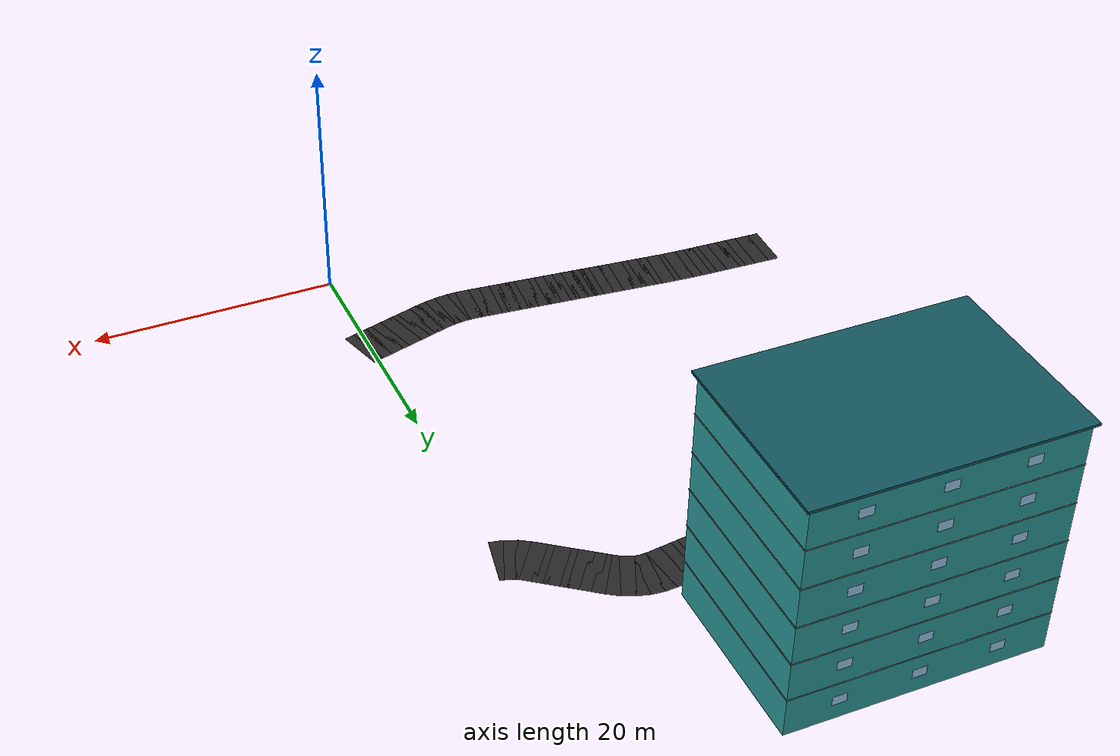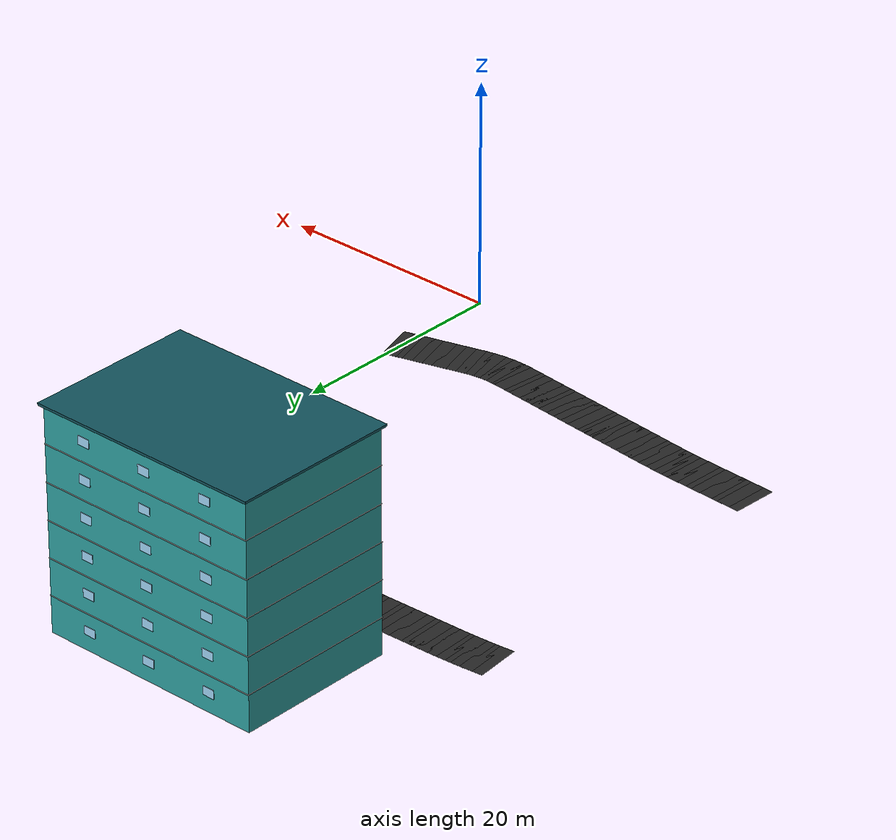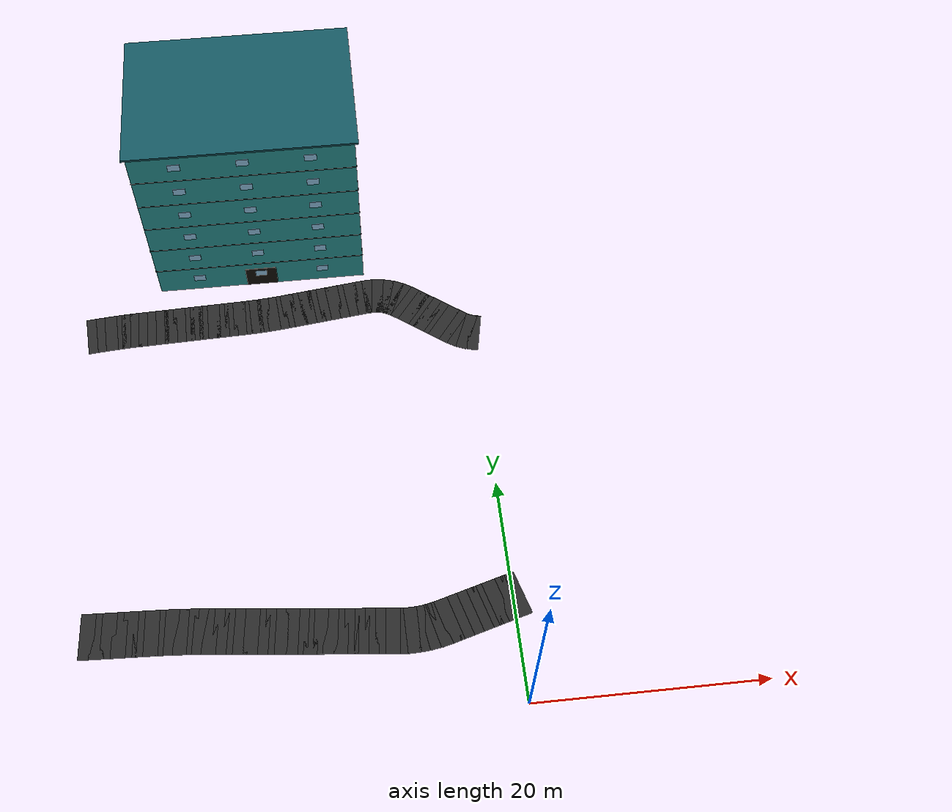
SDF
<sdf version="1.7">
 <world name="campus_delivery">
  <model name="campus_roads">
   <static>true</static>
   <link name="north_campus_loop_0176">
    <pose>0.088 36.438 0.002 0 0 2.942331</pose>
    <visual name="visual">
     <geometry><box><size>1.072 4.000 0.004</size></box></geometry>
     <material><ambient>0.160 0.160 0.160 1.000</ambient><diffuse>0.160 0.160 0.160 1.000</diffuse></material>
    </visual>
   </link>
   <link name="north_campus_loop_0177">
    <pose>-0.606 36.649 0.002 0 0 2.754195</pose>
    <visual name="visual">
     <geometry><box><size>1.085 4.000 0.004</size></box></geometry>
     <material><ambient>0.160 0.160 0.160 1.000</ambient><diffuse>0.160 0.160 0.160 1.000</diffuse></material>
    </visual>
   </link>
   <link name="north_campus_loop_0178">
    <pose>-1.273 36.994 0.002 0 0 2.578506</pose>
    <visual name="visual">
     <geometry><box><size>1.123 4.000 0.004</size></box></geometry>
     <material><ambient>0.160 0.160 0.160 1.000</ambient><diffuse>0.160 0.160 0.160 1.000</diffuse></material>
    </visual>
   </link>
   <link name="north_campus_loop_0179">
    <pose>-1.943 37.457 0.002 0 0 2.498092</pose>
    <visual name="visual">
     <geometry><box><size>1.207 4.000 0.004</size></box></geometry>
     <material><ambient>0.160 0.160 0.160 1.000</ambient><diffuse>0.160 0.160 0.160 1.000</diffuse></material>
    </visual>
   </link>
   <link name="north_campus_loop_0180">
    <pose>-2.629 37.971 0.002 0 0 2.498092</pose>
    <visual name="visual">
     <geometry><box><size>1.207 4.000 0.004</size></box></geometry>
     <material><ambient>0.160 0.160 0.160 1.000</ambient><diffuse>0.160 0.160 0.160 1.000</diffuse></material>
    </visual>
   </link>
   <link name="north_campus_loop_0181">
    <pose>-3.314 38.486 0.002 0 0 2.498092</pose>
    <visual name="visual">
     <geometry><box><size>1.207 4.000 0.004</size></box></geometry>
     <material><ambient>0.160 0.160 0.160 1.000</ambient><diffuse>0.160 0.160 0.160 1.000</diffuse></material>
    </visual>
   </link>
   <link name="north_campus_loop_0182">
    <pose>-4.000 39.000 0.002 0 0 2.498092</pose>
    <visual name="visual">
     <geometry><box><size>1.207 4.000 0.004</size></box></geometry>
     <material><ambient>0.160 0.160 0.160 1.000</ambient><diffuse>0.160 0.160 0.160 1.000</diffuse></material>
    </visual>
   </link>
   <link name="north_campus_loop_0183">
    <pose>-4.686 39.514 0.002 0 0 2.498092</pose>
    <visual name="visual">
     <geometry><box><size>1.207 4.000 0.004</size></box></geometry>
     <material><ambient>0.160 0.160 0.160 1.000</ambient><diffuse>0.160 0.160 0.160 1.000</diffuse></material>
    </visual>
   </link>
   <link name="north_campus_loop_0184">
    <pose>-5.371 40.029 0.002 0 0 2.498092</pose>
    <visual name="visual">
     <geometry><box><size>1.207 4.000 0.004</size></box></geometry>
     <material><ambient>0.160 0.160 0.160 1.000</ambient><diffuse>0.160 0.160 0.160 1.000</diffuse></material>
    </visual>
   </link>
   <link name="north_campus_loop_0185">
    <pose>-6.057 40.543 0.002 0 0 2.498092</pose>
    <visual name="visual">
     <geometry><box><size>1.207 4.000 0.004</size></box></geometry>
     <material><ambient>0.160 0.160 0.160 1.000</ambient><diffuse>0.160 0.160 0.160 1.000</diffuse></material>
    </visual>
   </link>
   <link name="north_campus_loop_0186">
    <pose>-6.728 41.011 0.002 0 0 2.569435</pose>
    <visual name="visual">
     <geometry><box><size>1.130 4.000 0.004</size></box></geometry>
     <material><ambient>0.160 0.160 0.160 1.000</ambient><diffuse>0.160 0.160 0.160 1.000</diffuse></material>
    </visual>
   </link>
   <link name="north_campus_loop_0187">
    <pose>-7.398 41.375 0.002 0 0 2.721815</pose>
    <visual name="visual">
     <geometry><box><size>1.101 4.000 0.004</size></box></geometry>
     <material><ambient>0.160 0.160 0.160 1.000</ambient><diffuse>0.160 0.160 0.160 1.000</diffuse></material>
    </visual>
   </link>
   <link name="north_campus_loop_0188">
    <pose>-8.100 41.624 0.002 0 0 2.882020</pose>
    <visual name="visual">
     <geometry><box><size>1.092 4.000 0.004</size></box></geometry>
     <material><ambient>0.160 0.160 0.160 1.000</ambient><diffuse>0.160 0.160 0.160 1.000</diffuse></material>
    </visual>
   </link>
   <link name="north_campus_loop_0189">
    <pose>-8.832 41.756 0.002 0 0 3.042225</pose>
    <visual name="visual">
     <geometry><box><size>1.101 4.000 0.004</size></box></geometry>
     <material><ambient>0.160 0.160 0.160 1.000</ambient><diffuse>0.160 0.160 0.160 1.000</diffuse></material>
    </visual>
   </link>
   <link name="north_campus_loop_0190">
    <pose>-9.595 41.773 0.002 0 0 -3.088581</pose>
    <visual name="visual">
     <geometry><box><size>1.130 4.000 0.004</size></box></geometry>
     <material><ambient>0.160 0.160 0.160 1.000</ambient><diffuse>0.160 0.160 0.160 1.000</diffuse></material>
    </visual>
   </link>
   <link name="north_campus_loop_0191">
    <pose>-10.431 41.696 0.002 0 0 -3.017238</pose>
    <visual name="visual">
     <geometry><box><size>1.249 4.000 0.004</size></box></geometry>
     <material><ambient>0.160 0.160 0.160 1.000</ambient><diffuse>0.160 0.160 0.160 1.000</diffuse></material>
    </visual>
   </link>
   <link name="north_campus_loop_0192">
    <pose>-11.323 41.585 0.002 0 0 -3.017238</pose>
    <visual name="visual">
     <geometry><box><size>1.249 4.000 0.004</size></box></geometry>
     <material><ambient>0.160 0.160 0.160 1.000</ambient><diffuse>0.160 0.160 0.160 1.000</diffuse></material>
    </visual>
   </link>
   <link name="north_campus_loop_0193">
    <pose>-12.215 41.473 0.002 0 0 -3.017238</pose>
    <visual name="visual">
     <geometry><box><size>1.249 4.000 0.004</size></box></geometry>
     <material><ambient>0.160 0.160 0.160 1.000</ambient><diffuse>0.160 0.160 0.160 1.000</diffuse></material>
    </visual>
   </link>
   <link name="north_campus_loop_0194">
    <pose>-13.108 41.362 0.002 0 0 -3.017238</pose>
    <visual name="visual">
     <geometry><box><size>1.249 4.000 0.004</size></box></geometry>
     <material><ambient>0.160 0.160 0.160 1.000</ambient><diffuse>0.160 0.160 0.160 1.000</diffuse></material>
    </visual>
   </link>
   <link name="north_campus_loop_0195">
    <pose>-14.000 41.250 0.002 0 0 -3.017238</pose>
    <visual name="visual">
     <geometry><box><size>1.249 4.000 0.004</size></box></geometry>
     <material><ambient>0.160 0.160 0.160 1.000</ambient><diffuse>0.160 0.160 0.160 1.000</diffuse></material>
    </visual>
   </link>
   <link name="north_campus_loop_0196">
    <pose>-14.892 41.138 0.002 0 0 -3.017238</pose>
    <visual name="visual">
     <geometry><box><size>1.249 4.000 0.004</size></box></geometry>
     <material><ambient>0.160 0.160 0.160 1.000</ambient><diffuse>0.160 0.160 0.160 1.000</diffuse></material>
    </visual>
   </link>
   <link name="north_campus_loop_0197">
    <pose>-15.785 41.027 0.002 0 0 -3.017238</pose>
    <visual name="visual">
     <geometry><box><size>1.249 4.000 0.004</size></box></geometry>
     <material><ambient>0.160 0.160 0.160 1.000</ambient><diffuse>0.160 0.160 0.160 1.000</diffuse></material>
    </visual>
   </link>
   <link name="north_campus_loop_0198">
    <pose>-16.677 40.915 0.002 0 0 -3.017238</pose>
    <visual name="visual">
     <geometry><box><size>1.249 4.000 0.004</size></box></geometry>
     <material><ambient>0.160 0.160 0.160 1.000</ambient><diffuse>0.160 0.160 0.160 1.000</diffuse></material>
    </visual>
   </link>
   <link name="north_campus_loop_0199">
    <pose>-17.569 40.804 0.002 0 0 -3.017238</pose>
    <visual name="visual">
     <geometry><box><size>1.249 4.000 0.004</size></box></geometry>
     <material><ambient>0.160 0.160 0.160 1.000</ambient><diffuse>0.160 0.160 0.160 1.000</diffuse></material>
    </visual>
   </link>
   <link name="north_campus_loop_0200">
    <pose>-18.413 40.702 0.002 0 0 -3.026095</pose>
    <visual name="visual">
     <geometry><box><size>1.150 4.000 0.004</size></box></geometry>
     <material><ambient>0.160 0.160 0.160 1.000</ambient><diffuse>0.160 0.160 0.160 1.000</diffuse></material>
    </visual>
   </link>
   <link name="north_campus_loop_0201">
    <pose>-19.208 40.617 0.002 0 0 -3.043825</pose>
    <visual name="visual">
     <geometry><box><size>1.149 4.000 0.004</size></box></geometry>
     <material><ambient>0.160 0.160 0.160 1.000</ambient><diffuse>0.160 0.160 0.160 1.000</diffuse></material>
    </visual>
   </link>
   <link name="north_campus_loop_0202">
    <pose>-20.004 40.546 0.002 0 0 -3.061566</pose>
    <visual name="visual">
     <geometry><box><size>1.149 4.000 0.004</size></box></geometry>
     <material><ambient>0.160 0.160 0.160 1.000</ambient><diffuse>0.160 0.160 0.160 1.000</diffuse></material>
    </visual>
   </link>
   <link name="north_campus_loop_0203">
    <pose>-20.801 40.489 0.002 0 0 -3.079307</pose>
    <visual name="visual">
     <geometry><box><size>1.149 4.000 0.004</size></box></geometry>
     <material><ambient>0.160 0.160 0.160 1.000</ambient><diffuse>0.160 0.160 0.160 1.000</diffuse></material>
    </visual>
   </link>
   <link name="north_campus_loop_0204">
    <pose>-21.599 40.446 0.002 0 0 -3.097036</pose>
    <visual name="visual">
     <geometry><box><size>1.150 4.000 0.004</size></box></geometry>
     <material><ambient>0.160 0.160 0.160 1.000</ambient><diffuse>0.160 0.160 0.160 1.000</diffuse></material>
    </visual>
   </link>
   <link name="north_campus_loop_0205">
    <pose>-22.415 40.414 0.002 0 0 -3.105894</pose>
    <visual name="visual">
     <geometry><box><size>1.184 4.000 0.004</size></box></geometry>
     <material><ambient>0.160 0.160 0.160 1.000</ambient><diffuse>0.160 0.160 0.160 1.000</diffuse></material>
    </visual>
   </link>
   <link name="north_campus_loop_0206">
    <pose>-23.249 40.384 0.002 0 0 -3.105894</pose>
    <visual name="visual">
     <geometry><box><size>1.184 4.000 0.004</size></box></geometry>
     <material><ambient>0.160 0.160 0.160 1.000</ambient><diffuse>0.160 0.160 0.160 1.000</diffuse></material>
    </visual>
   </link>
   <link name="north_campus_loop_0207">
    <pose>-24.083 40.354 0.002 0 0 -3.105894</pose>
    <visual name="visual">
     <geometry><box><size>1.184 4.000 0.004</size></box></geometry>
     <material><ambient>0.160 0.160 0.160 1.000</ambient><diffuse>0.160 0.160 0.160 1.000</diffuse></material>
    </visual>
   </link>
   <link name="north_campus_loop_0208">
    <pose>-24.916 40.324 0.002 0 0 -3.105894</pose>
    <visual name="visual">
     <geometry><box><size>1.184 4.000 0.004</size></box></geometry>
     <material><ambient>0.160 0.160 0.160 1.000</ambient><diffuse>0.160 0.160 0.160 1.000</diffuse></material>
    </visual>
   </link>
   <link name="north_campus_loop_0209">
    <pose>-25.750 40.295 0.002 0 0 -3.105894</pose>
    <visual name="visual">
     <geometry><box><size>1.184 4.000 0.004</size></box></geometry>
     <material><ambient>0.160 0.160 0.160 1.000</ambient><diffuse>0.160 0.160 0.160 1.000</diffuse></material>
    </visual>
   </link>
   <link name="north_campus_loop_0210">
    <pose>-26.583 40.265 0.002 0 0 -3.105894</pose>
    <visual name="visual">
     <geometry><box><size>1.184 4.000 0.004</size></box></geometry>
     <material><ambient>0.160 0.160 0.160 1.000</ambient><diffuse>0.160 0.160 0.160 1.000</diffuse></material>
    </visual>
   </link>
   <link name="north_campus_loop_0211">
    <pose>-27.417 40.235 0.002 0 0 -3.105894</pose>
    <visual name="visual">
     <geometry><box><size>1.184 4.000 0.004</size></box></geometry>
     <material><ambient>0.160 0.160 0.160 1.000</ambient><diffuse>0.160 0.160 0.160 1.000</diffuse></material>
    </visual>
   </link>
   <link name="north_campus_loop_0212">
    <pose>-28.250 40.205 0.002 0 0 -3.105894</pose>
    <visual name="visual">
     <geometry><box><size>1.184 4.000 0.004</size></box></geometry>
     <material><ambient>0.160 0.160 0.160 1.000</ambient><diffuse>0.160 0.160 0.160 1.000</diffuse></material>
    </visual>
   </link>
   <link name="north_campus_loop_0213">
    <pose>-29.084 40.176 0.002 0 0 -3.105894</pose>
    <visual name="visual">
     <geometry><box><size>1.184 4.000 0.004</size></box></geometry>
     <material><ambient>0.160 0.160 0.160 1.000</ambient><diffuse>0.160 0.160 0.160 1.000</diffuse></material>
    </visual>
   </link>
   <link name="north_campus_loop_0214">
    <pose>-29.917 40.146 0.002 0 0 -3.105894</pose>
    <visual name="visual">
     <geometry><box><size>1.184 4.000 0.004</size></box></geometry>
     <material><ambient>0.160 0.160 0.160 1.000</ambient><diffuse>0.160 0.160 0.160 1.000</diffuse></material>
    </visual>
   </link>
   <link name="north_campus_loop_0215">
    <pose>-30.751 40.116 0.002 0 0 -3.105894</pose>
    <visual name="visual">
     <geometry><box><size>1.184 4.000 0.004</size></box></geometry>
     <material><ambient>0.160 0.160 0.160 1.000</ambient><diffuse>0.160 0.160 0.160 1.000</diffuse></material>
    </visual>
   </link>
   <link name="north_campus_loop_0216">
    <pose>-31.585 40.086 0.002 0 0 -3.105894</pose>
    <visual name="visual">
     <geometry><box><size>1.184 4.000 0.004</size></box></geometry>
     <material><ambient>0.160 0.160 0.160 1.000</ambient><diffuse>0.160 0.160 0.160 1.000</diffuse></material>
    </visual>
   </link>
   <link name="north_campus_loop_0217">
    <pose>-32.401 40.055 0.002 0 0 -3.099500</pose>
    <visual name="visual">
     <geometry><box><size>1.150 4.000 0.004</size></box></geometry>
     <material><ambient>0.160 0.160 0.160 1.000</ambient><diffuse>0.160 0.160 0.160 1.000</diffuse></material>
    </visual>
   </link>
   <link name="north_campus_loop_0218">
    <pose>-33.200 40.016 0.002 0 0 -3.086706</pose>
    <visual name="visual">
     <geometry><box><size>1.150 4.000 0.004</size></box></geometry>
     <material><ambient>0.160 0.160 0.160 1.000</ambient><diffuse>0.160 0.160 0.160 1.000</diffuse></material>
    </visual>
   </link>
   <link name="north_campus_loop_0219">
    <pose>-33.998 39.967 0.002 0 0 -3.073909</pose>
    <visual name="visual">
     <geometry><box><size>1.150 4.000 0.004</size></box></geometry>
     <material><ambient>0.160 0.160 0.160 1.000</ambient><diffuse>0.160 0.160 0.160 1.000</diffuse></material>
    </visual>
   </link>
   <link name="north_campus_loop_0220">
    <pose>-34.795 39.908 0.002 0 0 -3.061111</pose>
    <visual name="visual">
     <geometry><box><size>1.150 4.000 0.004</size></box></geometry>
     <material><ambient>0.160 0.160 0.160 1.000</ambient><diffuse>0.160 0.160 0.160 1.000</diffuse></material>
    </visual>
   </link>
   <link name="north_campus_loop_0221">
    <pose>-35.592 39.838 0.002 0 0 -3.048318</pose>
    <visual name="visual">
     <geometry><box><size>1.150 4.000 0.004</size></box></geometry>
     <material><ambient>0.160 0.160 0.160 1.000</ambient><diffuse>0.160 0.160 0.160 1.000</diffuse></material>
    </visual>
   </link>
   <link name="north_campus_loop_0222">
    <pose>-36.435 39.756 0.002 0 0 -3.041924</pose>
    <visual name="visual">
     <geometry><box><size>1.244 4.000 0.004</size></box></geometry>
     <material><ambient>0.160 0.160 0.160 1.000</ambient><diffuse>0.160 0.160 0.160 1.000</diffuse></material>
    </visual>
   </link>
   <link name="north_campus_loop_0308">
    <pose>-35.779 9.324 0.002 0 0 -0.041643</pose>
    <visual name="visual">
     <geometry><box><size>1.240 4.000 0.004</size></box></geometry>
     <material><ambient>0.160 0.160 0.160 1.000</ambient><diffuse>0.160 0.160 0.160 1.000</diffuse></material>
    </visual>
   </link>
   <link name="north_campus_loop_0309">
    <pose>-34.889 9.287 0.002 0 0 -0.041643</pose>
    <visual name="visual">
     <geometry><box><size>1.240 4.000 0.004</size></box></geometry>
     <material><ambient>0.160 0.160 0.160 1.000</ambient><diffuse>0.160 0.160 0.160 1.000</diffuse></material>
    </visual>
   </link>
   <link name="north_campus_loop_0310">
    <pose>-34.000 9.250 0.002 0 0 -0.041643</pose>
    <visual name="visual">
     <geometry><box><size>1.240 4.000 0.004</size></box></geometry>
     <material><ambient>0.160 0.160 0.160 1.000</ambient><diffuse>0.160 0.160 0.160 1.000</diffuse></material>
    </visual>
   </link>
   <link name="north_campus_loop_0311">
    <pose>-33.111 9.213 0.002 0 0 -0.041643</pose>
    <visual name="visual">
     <geometry><box><size>1.240 4.000 0.004</size></box></geometry>
     <material><ambient>0.160 0.160 0.160 1.000</ambient><diffuse>0.160 0.160 0.160 1.000</diffuse></material>
    </visual>
   </link>
   <link name="north_campus_loop_0312">
    <pose>-32.221 9.176 0.002 0 0 -0.041643</pose>
    <visual name="visual">
     <geometry><box><size>1.240 4.000 0.004</size></box></geometry>
     <material><ambient>0.160 0.160 0.160 1.000</ambient><diffuse>0.160 0.160 0.160 1.000</diffuse></material>
    </visual>
   </link>
   <link name="north_campus_loop_0313">
    <pose>-31.332 9.139 0.002 0 0 -0.041643</pose>
    <visual name="visual">
     <geometry><box><size>1.240 4.000 0.004</size></box></geometry>
     <material><ambient>0.160 0.160 0.160 1.000</ambient><diffuse>0.160 0.160 0.160 1.000</diffuse></material>
    </visual>
   </link>
   <link name="north_campus_loop_0314">
    <pose>-30.443 9.102 0.002 0 0 -0.041643</pose>
    <visual name="visual">
     <geometry><box><size>1.240 4.000 0.004</size></box></geometry>
     <material><ambient>0.160 0.160 0.160 1.000</ambient><diffuse>0.160 0.160 0.160 1.000</diffuse></material>
    </visual>
   </link>
   <link name="north_campus_loop_0315">
    <pose>-29.599 9.064 0.002 0 0 -0.047443</pose>
    <visual name="visual">
     <geometry><box><size>1.150 4.000 0.004</size></box></geometry>
     <material><ambient>0.160 0.160 0.160 1.000</ambient><diffuse>0.160 0.160 0.160 1.000</diffuse></material>
    </visual>
   </link>
   <link name="north_campus_loop_0316">
    <pose>-28.800 9.022 0.002 0 0 -0.059048</pose>
    <visual name="visual">
     <geometry><box><size>1.150 4.000 0.004</size></box></geometry>
     <material><ambient>0.160 0.160 0.160 1.000</ambient><diffuse>0.160 0.160 0.160 1.000</diffuse></material>
    </visual>
   </link>
   <link name="north_campus_loop_0317">
    <pose>-28.002 8.970 0.002 0 0 -0.070656</pose>
    <visual name="visual">
     <geometry><box><size>1.150 4.000 0.004</size></box></geometry>
     <material><ambient>0.160 0.160 0.160 1.000</ambient><diffuse>0.160 0.160 0.160 1.000</diffuse></material>
    </visual>
   </link>
   <link name="north_campus_loop_0318">
    <pose>-27.205 8.909 0.002 0 0 -0.082264</pose>
    <visual name="visual">
     <geometry><box><size>1.150 4.000 0.004</size></box></geometry>
     <material><ambient>0.160 0.160 0.160 1.000</ambient><diffuse>0.160 0.160 0.160 1.000</diffuse></material>
    </visual>
   </link>
   <link name="north_campus_loop_0319">
    <pose>-26.408 8.838 0.002 0 0 -0.093868</pose>
    <visual name="visual">
     <geometry><box><size>1.150 4.000 0.004</size></box></geometry>
     <material><ambient>0.160 0.160 0.160 1.000</ambient><diffuse>0.160 0.160 0.160 1.000</diffuse></material>
    </visual>
   </link>
   <link name="north_campus_loop_0320">
    <pose>-25.580 8.758 0.002 0 0 -0.099669</pose>
    <visual name="visual">
     <geometry><box><size>1.214 4.000 0.004</size></box></geometry>
     <material><ambient>0.160 0.160 0.160 1.000</ambient><diffuse>0.160 0.160 0.160 1.000</diffuse></material>
    </visual>
   </link>
   <link name="north_campus_loop_0321">
    <pose>-24.720 8.672 0.002 0 0 -0.099669</pose>
    <visual name="visual">
     <geometry><box><size>1.214 4.000 0.004</size></box></geometry>
     <material><ambient>0.160 0.160 0.160 1.000</ambient><diffuse>0.160 0.160 0.160 1.000</diffuse></material>
    </visual>
   </link>
   <link name="north_campus_loop_0322">
    <pose>-23.860 8.586 0.002 0 0 -0.099669</pose>
    <visual name="visual">
     <geometry><box><size>1.214 4.000 0.004</size></box></geometry>
     <material><ambient>0.160 0.160 0.160 1.000</ambient><diffuse>0.160 0.160 0.160 1.000</diffuse></material>
    </visual>
   </link>
   <link name="north_campus_loop_0323">
    <pose>-23.000 8.500 0.002 0 0 -0.099669</pose>
    <visual name="visual">
     <geometry><box><size>1.214 4.000 0.004</size></box></geometry>
     <material><ambient>0.160 0.160 0.160 1.000</ambient><diffuse>0.160 0.160 0.160 1.000</diffuse></material>
    </visual>
   </link>
   <link name="north_campus_loop_0324">
    <pose>-22.140 8.414 0.002 0 0 -0.099669</pose>
    <visual name="visual">
     <geometry><box><size>1.214 4.000 0.004</size></box></geometry>
     <material><ambient>0.160 0.160 0.160 1.000</ambient><diffuse>0.160 0.160 0.160 1.000</diffuse></material>
    </visual>
   </link>
   <link name="north_campus_loop_0325">
    <pose>-21.280 8.328 0.002 0 0 -0.099669</pose>
    <visual name="visual">
     <geometry><box><size>1.214 4.000 0.004</size></box></geometry>
     <material><ambient>0.160 0.160 0.160 1.000</ambient><diffuse>0.160 0.160 0.160 1.000</diffuse></material>
    </visual>
   </link>
   <link name="north_campus_loop_0326">
    <pose>-20.420 8.242 0.002 0 0 -0.099669</pose>
    <visual name="visual">
     <geometry><box><size>1.214 4.000 0.004</size></box></geometry>
     <material><ambient>0.160 0.160 0.160 1.000</ambient><diffuse>0.160 0.160 0.160 1.000</diffuse></material>
    </visual>
   </link>
   <link name="north_campus_loop_0327">
    <pose>-19.592 8.159 0.002 0 0 -0.099669</pose>
    <visual name="visual">
     <geometry><box><size>1.150 4.000 0.004</size></box></geometry>
     <material><ambient>0.160 0.160 0.160 1.000</ambient><diffuse>0.160 0.160 0.160 1.000</diffuse></material>
    </visual>
   </link>
   <link name="north_campus_loop_0328">
    <pose>-18.796 8.080 0.002 0 0 -0.099669</pose>
    <visual name="visual">
     <geometry><box><size>1.150 4.000 0.004</size></box></geometry>
     <material><ambient>0.160 0.160 0.160 1.000</ambient><diffuse>0.160 0.160 0.160 1.000</diffuse></material>
    </visual>
   </link>
   <link name="north_campus_loop_0329">
    <pose>-18.000 8.000 0.002 0 0 -0.099669</pose>
    <visual name="visual">
     <geometry><box><size>1.150 4.000 0.004</size></box></geometry>
     <material><ambient>0.160 0.160 0.160 1.000</ambient><diffuse>0.160 0.160 0.160 1.000</diffuse></material>
    </visual>
   </link>
   <link name="north_campus_loop_0330">
    <pose>-17.204 7.920 0.002 0 0 -0.099669</pose>
    <visual name="visual">
     <geometry><box><size>1.150 4.000 0.004</size></box></geometry>
     <material><ambient>0.160 0.160 0.160 1.000</ambient><diffuse>0.160 0.160 0.160 1.000</diffuse></material>
    </visual>
   </link>
   <link name="north_campus_loop_0331">
    <pose>-16.408 7.841 0.002 0 0 -0.099669</pose>
    <visual name="visual">
     <geometry><box><size>1.150 4.000 0.004</size></box></geometry>
     <material><ambient>0.160 0.160 0.160 1.000</ambient><diffuse>0.160 0.160 0.160 1.000</diffuse></material>
    </visual>
   </link>
   <link name="north_campus_loop_0332">
    <pose>-15.580 7.758 0.002 0 0 -0.099669</pose>
    <visual name="visual">
     <geometry><box><size>1.214 4.000 0.004</size></box></geometry>
     <material><ambient>0.160 0.160 0.160 1.000</ambient><diffuse>0.160 0.160 0.160 1.000</diffuse></material>
    </visual>
   </link>
   <link name="north_campus_loop_0333">
    <pose>-14.720 7.672 0.002 0 0 -0.099669</pose>
    <visual name="visual">
     <geometry><box><size>1.214 4.000 0.004</size></box></geometry>
     <material><ambient>0.160 0.160 0.160 1.000</ambient><diffuse>0.160 0.160 0.160 1.000</diffuse></material>
    </visual>
   </link>
   <link name="north_campus_loop_0334">
    <pose>-13.860 7.586 0.002 0 0 -0.099669</pose>
    <visual name="visual">
     <geometry><box><size>1.214 4.000 0.004</size></box></geometry>
     <material><ambient>0.160 0.160 0.160 1.000</ambient><diffuse>0.160 0.160 0.160 1.000</diffuse></material>
    </visual>
   </link>
   <link name="north_campus_loop_0335">
    <pose>-13.000 7.500 0.002 0 0 -0.099669</pose>
    <visual name="visual">
     <geometry><box><size>1.214 4.000 0.004</size></box></geometry>
     <material><ambient>0.160 0.160 0.160 1.000</ambient><diffuse>0.160 0.160 0.160 1.000</diffuse></material>
    </visual>
   </link>
   <link name="north_campus_loop_0336">
    <pose>-12.140 7.414 0.002 0 0 -0.099669</pose>
    <visual name="visual">
     <geometry><box><size>1.214 4.000 0.004</size></box></geometry>
     <material><ambient>0.160 0.160 0.160 1.000</ambient><diffuse>0.160 0.160 0.160 1.000</diffuse></material>
    </visual>
   </link>
   <link name="north_campus_loop_0337">
    <pose>-11.280 7.328 0.002 0 0 -0.099669</pose>
    <visual name="visual">
     <geometry><box><size>1.214 4.000 0.004</size></box></geometry>
     <material><ambient>0.160 0.160 0.160 1.000</ambient><diffuse>0.160 0.160 0.160 1.000</diffuse></material>
    </visual>
   </link>
   <link name="north_campus_loop_0338">
    <pose>-10.420 7.242 0.002 0 0 -0.099669</pose>
    <visual name="visual">
     <geometry><box><size>1.214 4.000 0.004</size></box></geometry>
     <material><ambient>0.160 0.160 0.160 1.000</ambient><diffuse>0.160 0.160 0.160 1.000</diffuse></material>
    </visual>
   </link>
   <link name="north_campus_loop_0339">
    <pose>-9.593 7.174 0.002 0 0 -0.062520</pose>
    <visual name="visual">
     <geometry><box><size>1.145 4.000 0.004</size></box></geometry>
     <material><ambient>0.160 0.160 0.160 1.000</ambient><diffuse>0.160 0.160 0.160 1.000</diffuse></material>
    </visual>
   </link>
   <link name="north_campus_loop_0340">
    <pose>-8.803 7.154 0.002 0 0 0.012958</pose>
    <visual name="visual">
     <geometry><box><size>1.138 4.000 0.004</size></box></geometry>
     <material><ambient>0.160 0.160 0.160 1.000</ambient><diffuse>0.160 0.160 0.160 1.000</diffuse></material>
    </visual>
   </link>
   <link name="north_campus_loop_0341">
    <pose>-8.017 7.195 0.002 0 0 0.089316</pose>
    <visual name="visual">
     <geometry><box><size>1.136 4.000 0.004</size></box></geometry>
     <material><ambient>0.160 0.160 0.160 1.000</ambient><diffuse>0.160 0.160 0.160 1.000</diffuse></material>
    </visual>
   </link>
   <link name="north_campus_loop_0342">
    <pose>-7.237 7.295 0.002 0 0 0.165673</pose>
    <visual name="visual">
     <geometry><box><size>1.138 4.000 0.004</size></box></geometry>
     <material><ambient>0.160 0.160 0.160 1.000</ambient><diffuse>0.160 0.160 0.160 1.000</diffuse></material>
    </visual>
   </link>
   <link name="north_campus_loop_0343">
    <pose>-6.463 7.455 0.002 0 0 0.241151</pose>
    <visual name="visual">
     <geometry><box><size>1.145 4.000 0.004</size></box></geometry>
     <material><ambient>0.160 0.160 0.160 1.000</ambient><diffuse>0.160 0.160 0.160 1.000</diffuse></material>
    </visual>
   </link>
   <link name="north_campus_loop_0344">
    <pose>-5.654 7.670 0.002 0 0 0.278300</pose>
    <visual name="visual">
     <geometry><box><size>1.230 4.000 0.004</size></box></geometry>
     <material><ambient>0.160 0.160 0.160 1.000</ambient><diffuse>0.160 0.160 0.160 1.000</diffuse></material>
    </visual>
   </link>
   <link name="north_campus_loop_0345">
    <pose>-4.808 7.912 0.002 0 0 0.278300</pose>
    <visual name="visual">
     <geometry><box><size>1.230 4.000 0.004</size></box></geometry>
     <material><ambient>0.160 0.160 0.160 1.000</ambient><diffuse>0.160 0.160 0.160 1.000</diffuse></material>
    </visual>
   </link>
   <link name="north_campus_loop_0346">
    <pose>-3.962 8.154 0.002 0 0 0.278300</pose>
    <visual name="visual">
     <geometry><box><size>1.230 4.000 0.004</size></box></geometry>
     <material><ambient>0.160 0.160 0.160 1.000</ambient><diffuse>0.160 0.160 0.160 1.000</diffuse></material>
    </visual>
   </link>
   <link name="north_campus_loop_0347">
    <pose>-3.115 8.396 0.002 0 0 0.278300</pose>
    <visual name="visual">
     <geometry><box><size>1.230 4.000 0.004</size></box></geometry>
     <material><ambient>0.160 0.160 0.160 1.000</ambient><diffuse>0.160 0.160 0.160 1.000</diffuse></material>
    </visual>
   </link>
   <link name="north_campus_loop_0348">
    <pose>-2.269 8.637 0.002 0 0 0.278300</pose>
    <visual name="visual">
     <geometry><box><size>1.230 4.000 0.004</size></box></geometry>
     <material><ambient>0.160 0.160 0.160 1.000</ambient><diffuse>0.160 0.160 0.160 1.000</diffuse></material>
    </visual>
   </link>
   <link name="north_campus_loop_0349">
    <pose>-1.423 8.879 0.002 0 0 0.278300</pose>
    <visual name="visual">
     <geometry><box><size>1.230 4.000 0.004</size></box></geometry>
     <material><ambient>0.160 0.160 0.160 1.000</ambient><diffuse>0.160 0.160 0.160 1.000</diffuse></material>
    </visual>
   </link>
   <link name="north_campus_loop_0350">
    <pose>-0.577 9.121 0.002 0 0 0.278300</pose>
    <visual name="visual">
     <geometry><box><size>1.230 4.000 0.004</size></box></geometry>
     <material><ambient>0.160 0.160 0.160 1.000</ambient><diffuse>0.160 0.160 0.160 1.000</diffuse></material>
    </visual>
   </link>
   <link name="north_campus_loop_0351">
    <pose>0.269 9.363 0.002 0 0 0.278300</pose>
    <visual name="visual">
     <geometry><box><size>1.230 4.000 0.004</size></box></geometry>
     <material><ambient>0.160 0.160 0.160 1.000</ambient><diffuse>0.160 0.160 0.160 1.000</diffuse></material>
    </visual>
   </link>
  </model>
  <model name="innovation_center">
   <static>true</static>
   <pose>-20.000 51.500 0 0 0 0</pose>
   <link name="body">
    <visual name="body">
     <pose>0 0 9.600 0 0 0</pose>
     <geometry><box><size>20.000 14.000 19.200</size></box></geometry>
     <material><ambient>0.180 0.620 0.620 1.000</ambient><diffuse>0.180 0.620 0.620 1.000</diffuse></material>
    </visual>
    <collision name="body_collision">
     <pose>0 0 9.600 0 0 0</pose>
     <geometry><box><size>20.000 14.000 19.200</size></box></geometry>
    </collision>
    <visual name="roof">
     <pose>0 0 19.300 0 0 0</pose>
     <geometry><box><size>20.600 14.600 0.200</size></box></geometry>
     <material><ambient>0.080 0.340 0.380 1.000</ambient><diffuse>0.080 0.340 0.380 1.000</diffuse></material>
    </visual>
    <visual name="floor_sep_n_1">
     <pose>0 7.018 3.200 0 0 0</pose>
     <geometry><box><size>20.100 0.035 0.060</size></box></geometry>
     <material><ambient>0.080 0.080 0.080 1.000</ambient><diffuse>0.080 0.080 0.080 1.000</diffuse></material>
    </visual>
    <visual name="floor_sep_s_1">
     <pose>0 -7.018 3.200 0 0 0</pose>
     <geometry><box><size>20.100 0.035 0.060</size></box></geometry>
     <material><ambient>0.080 0.080 0.080 1.000</ambient><diffuse>0.080 0.080 0.080 1.000</diffuse></material>
    </visual>
    <visual name="floor_sep_e_1">
     <pose>10.018 0 3.200 0 0 0</pose>
     <geometry><box><size>0.035 14.100 0.060</size></box></geometry>
     <material><ambient>0.080 0.080 0.080 1.000</ambient><diffuse>0.080 0.080 0.080 1.000</diffuse></material>
    </visual>
    <visual name="floor_sep_w_1">
     <pose>-10.018 0 3.200 0 0 0</pose>
     <geometry><box><size>0.035 14.100 0.060</size></box></geometry>
     <material><ambient>0.080 0.080 0.080 1.000</ambient><diffuse>0.080 0.080 0.080 1.000</diffuse></material>
    </visual>
    <visual name="floor_sep_n_2">
     <pose>0 7.018 6.400 0 0 0</pose>
     <geometry><box><size>20.100 0.035 0.060</size></box></geometry>
     <material><ambient>0.080 0.080 0.080 1.000</ambient><diffuse>0.080 0.080 0.080 1.000</diffuse></material>
    </visual>
    <visual name="floor_sep_s_2">
     <pose>0 -7.018 6.400 0 0 0</pose>
     <geometry><box><size>20.100 0.035 0.060</size></box></geometry>
     <material><ambient>0.080 0.080 0.080 1.000</ambient><diffuse>0.080 0.080 0.080 1.000</diffuse></material>
    </visual>
    <visual name="floor_sep_e_2">
     <pose>10.018 0 6.400 0 0 0</pose>
     <geometry><box><size>0.035 14.100 0.060</size></box></geometry>
     <material><ambient>0.080 0.080 0.080 1.000</ambient><diffuse>0.080 0.080 0.080 1.000</diffuse></material>
    </visual>
    <visual name="floor_sep_w_2">
     <pose>-10.018 0 6.400 0 0 0</pose>
     <geometry><box><size>0.035 14.100 0.060</size></box></geometry>
     <material><ambient>0.080 0.080 0.080 1.000</ambient><diffuse>0.080 0.080 0.080 1.000</diffuse></material>
    </visual>
    <visual name="floor_sep_n_3">
     <pose>0 7.018 9.600 0 0 0</pose>
     <geometry><box><size>20.100 0.035 0.060</size></box></geometry>
     <material><ambient>0.080 0.080 0.080 1.000</ambient><diffuse>0.080 0.080 0.080 1.000</diffuse></material>
    </visual>
    <visual name="floor_sep_s_3">
     <pose>0 -7.018 9.600 0 0 0</pose>
     <geometry><box><size>20.100 0.035 0.060</size></box></geometry>
     <material><ambient>0.080 0.080 0.080 1.000</ambient><diffuse>0.080 0.080 0.080 1.000</diffuse></material>
    </visual>
    <visual name="floor_sep_e_3">
     <pose>10.018 0 9.600 0 0 0</pose>
     <geometry><box><size>0.035 14.100 0.060</size></box></geometry>
     <material><ambient>0.080 0.080 0.080 1.000</ambient><diffuse>0.080 0.080 0.080 1.000</diffuse></material>
    </visual>
    <visual name="floor_sep_w_3">
     <pose>-10.018 0 9.600 0 0 0</pose>
     <geometry><box><size>0.035 14.100 0.060</size></box></geometry>
     <material><ambient>0.080 0.080 0.080 1.000</ambient><diffuse>0.080 0.080 0.080 1.000</diffuse></material>
    </visual>
    <visual name="floor_sep_n_4">
     <pose>0 7.018 12.800 0 0 0</pose>
     <geometry><box><size>20.100 0.035 0.060</size></box></geometry>
     <material><ambient>0.080 0.080 0.080 1.000</ambient><diffuse>0.080 0.080 0.080 1.000</diffuse></material>
    </visual>
    <visual name="floor_sep_s_4">
     <pose>0 -7.018 12.800 0 0 0</pose>
     <geometry><box><size>20.100 0.035 0.060</size></box></geometry>
     <material><ambient>0.080 0.080 0.080 1.000</ambient><diffuse>0.080 0.080 0.080 1.000</diffuse></material>
    </visual>
    <visual name="floor_sep_e_4">
     <pose>10.018 0 12.800 0 0 0</pose>
     <geometry><box><size>0.035 14.100 0.060</size></box></geometry>
     <material><ambient>0.080 0.080 0.080 1.000</ambient><diffuse>0.080 0.080 0.080 1.000</diffuse></material>
    </visual>
    <visual name="floor_sep_w_4">
     <pose>-10.018 0 12.800 0 0 0</pose>
     <geometry><box><size>0.035 14.100 0.060</size></box></geometry>
     <material><ambient>0.080 0.080 0.080 1.000</ambient><diffuse>0.080 0.080 0.080 1.000</diffuse></material>
    </visual>
    <visual name="floor_sep_n_5">
     <pose>0 7.018 16.000 0 0 0</pose>
     <geometry><box><size>20.100 0.035 0.060</size></box></geometry>
     <material><ambient>0.080 0.080 0.080 1.000</ambient><diffuse>0.080 0.080 0.080 1.000</diffuse></material>
    </visual>
    <visual name="floor_sep_s_5">
     <pose>0 -7.018 16.000 0 0 0</pose>
     <geometry><box><size>20.100 0.035 0.060</size></box></geometry>
     <material><ambient>0.080 0.080 0.080 1.000</ambient><diffuse>0.080 0.080 0.080 1.000</diffuse></material>
    </visual>
    <visual name="floor_sep_e_5">
     <pose>10.018 0 16.000 0 0 0</pose>
     <geometry><box><size>0.035 14.100 0.060</size></box></geometry>
     <material><ambient>0.080 0.080 0.080 1.000</ambient><diffuse>0.080 0.080 0.080 1.000</diffuse></material>
    </visual>
    <visual name="floor_sep_w_5">
     <pose>-10.018 0 16.000 0 0 0</pose>
     <geometry><box><size>0.035 14.100 0.060</size></box></geometry>
     <material><ambient>0.080 0.080 0.080 1.000</ambient><diffuse>0.080 0.080 0.080 1.000</diffuse></material>
    </visual>
    <visual name="front_door">
     <pose>0 -7.012 1.2 0 0 0</pose>
     <geometry><box><size>3.000 0.050 2.400</size></box></geometry>
     <material><ambient>0.080 0.060 0.040 1.000</ambient><diffuse>0.080 0.060 0.040 1.000</diffuse></material>
    </visual>
    <visual name="win_n_1_-6.0">
     <pose>-6.000 7.020 1.700 0 0 0</pose>
     <geometry><box><size>1.100 0.035 0.750</size></box></geometry>
     <material><ambient>0.620 0.820 0.950 1.000</ambient><diffuse>0.620 0.820 0.950 1.000</diffuse></material>
    </visual>
    <visual name="win_s_1_-6.0">
     <pose>-6.000 -7.020 1.700 0 0 0</pose>
     <geometry><box><size>1.100 0.035 0.750</size></box></geometry>
     <material><ambient>0.620 0.820 0.950 1.000</ambient><diffuse>0.620 0.820 0.950 1.000</diffuse></material>
    </visual>
    <visual name="win_n_1_0.0">
     <pose>0.000 7.020 1.700 0 0 0</pose>
     <geometry><box><size>1.100 0.035 0.750</size></box></geometry>
     <material><ambient>0.620 0.820 0.950 1.000</ambient><diffuse>0.620 0.820 0.950 1.000</diffuse></material>
    </visual>
    <visual name="win_s_1_0.0">
     <pose>0.000 -7.020 1.700 0 0 0</pose>
     <geometry><box><size>1.100 0.035 0.750</size></box></geometry>
     <material><ambient>0.620 0.820 0.950 1.000</ambient><diffuse>0.620 0.820 0.950 1.000</diffuse></material>
    </visual>
    <visual name="win_n_1_6.0">
     <pose>6.000 7.020 1.700 0 0 0</pose>
     <geometry><box><size>1.100 0.035 0.750</size></box></geometry>
     <material><ambient>0.620 0.820 0.950 1.000</ambient><diffuse>0.620 0.820 0.950 1.000</diffuse></material>
    </visual>
    <visual name="win_s_1_6.0">
     <pose>6.000 -7.020 1.700 0 0 0</pose>
     <geometry><box><size>1.100 0.035 0.750</size></box></geometry>
     <material><ambient>0.620 0.820 0.950 1.000</ambient><diffuse>0.620 0.820 0.950 1.000</diffuse></material>
    </visual>
    <visual name="win_n_2_-6.0">
     <pose>-6.000 7.020 4.900 0 0 0</pose>
     <geometry><box><size>1.100 0.035 0.750</size></box></geometry>
     <material><ambient>0.620 0.820 0.950 1.000</ambient><diffuse>0.620 0.820 0.950 1.000</diffuse></material>
    </visual>
    <visual name="win_s_2_-6.0">
     <pose>-6.000 -7.020 4.900 0 0 0</pose>
     <geometry><box><size>1.100 0.035 0.750</size></box></geometry>
     <material><ambient>0.620 0.820 0.950 1.000</ambient><diffuse>0.620 0.820 0.950 1.000</diffuse></material>
    </visual>
    <visual name="win_n_2_0.0">
     <pose>0.000 7.020 4.900 0 0 0</pose>
     <geometry><box><size>1.100 0.035 0.750</size></box></geometry>
     <material><ambient>0.620 0.820 0.950 1.000</ambient><diffuse>0.620 0.820 0.950 1.000</diffuse></material>
    </visual>
    <visual name="win_s_2_0.0">
     <pose>0.000 -7.020 4.900 0 0 0</pose>
     <geometry><box><size>1.100 0.035 0.750</size></box></geometry>
     <material><ambient>0.620 0.820 0.950 1.000</ambient><diffuse>0.620 0.820 0.950 1.000</diffuse></material>
    </visual>
    <visual name="win_n_2_6.0">
     <pose>6.000 7.020 4.900 0 0 0</pose>
     <geometry><box><size>1.100 0.035 0.750</size></box></geometry>
     <material><ambient>0.620 0.820 0.950 1.000</ambient><diffuse>0.620 0.820 0.950 1.000</diffuse></material>
    </visual>
    <visual name="win_s_2_6.0">
     <pose>6.000 -7.020 4.900 0 0 0</pose>
     <geometry><box><size>1.100 0.035 0.750</size></box></geometry>
     <material><ambient>0.620 0.820 0.950 1.000</ambient><diffuse>0.620 0.820 0.950 1.000</diffuse></material>
    </visual>
    <visual name="win_n_3_-6.0">
     <pose>-6.000 7.020 8.100 0 0 0</pose>
     <geometry><box><size>1.100 0.035 0.750</size></box></geometry>
     <material><ambient>0.620 0.820 0.950 1.000</ambient><diffuse>0.620 0.820 0.950 1.000</diffuse></material>
    </visual>
    <visual name="win_s_3_-6.0">
     <pose>-6.000 -7.020 8.100 0 0 0</pose>
     <geometry><box><size>1.100 0.035 0.750</size></box></geometry>
     <material><ambient>0.620 0.820 0.950 1.000</ambient><diffuse>0.620 0.820 0.950 1.000</diffuse></material>
    </visual>
    <visual name="win_n_3_0.0">
     <pose>0.000 7.020 8.100 0 0 0</pose>
     <geometry><box><size>1.100 0.035 0.750</size></box></geometry>
     <material><ambient>0.620 0.820 0.950 1.000</ambient><diffuse>0.620 0.820 0.950 1.000</diffuse></material>
    </visual>
    <visual name="win_s_3_0.0">
     <pose>0.000 -7.020 8.100 0 0 0</pose>
     <geometry><box><size>1.100 0.035 0.750</size></box></geometry>
     <material><ambient>0.620 0.820 0.950 1.000</ambient><diffuse>0.620 0.820 0.950 1.000</diffuse></material>
    </visual>
    <visual name="win_n_3_6.0">
     <pose>6.000 7.020 8.100 0 0 0</pose>
     <geometry><box><size>1.100 0.035 0.750</size></box></geometry>
     <material><ambient>0.620 0.820 0.950 1.000</ambient><diffuse>0.620 0.820 0.950 1.000</diffuse></material>
    </visual>
    <visual name="win_s_3_6.0">
     <pose>6.000 -7.020 8.100 0 0 0</pose>
     <geometry><box><size>1.100 0.035 0.750</size></box></geometry>
     <material><ambient>0.620 0.820 0.950 1.000</ambient><diffuse>0.620 0.820 0.950 1.000</diffuse></material>
    </visual>
    <visual name="win_n_4_-6.0">
     <pose>-6.000 7.020 11.300 0 0 0</pose>
     <geometry><box><size>1.100 0.035 0.750</size></box></geometry>
     <material><ambient>0.620 0.820 0.950 1.000</ambient><diffuse>0.620 0.820 0.950 1.000</diffuse></material>
    </visual>
    <visual name="win_s_4_-6.0">
     <pose>-6.000 -7.020 11.300 0 0 0</pose>
     <geometry><box><size>1.100 0.035 0.750</size></box></geometry>
     <material><ambient>0.620 0.820 0.950 1.000</ambient><diffuse>0.620 0.820 0.950 1.000</diffuse></material>
    </visual>
    <visual name="win_n_4_0.0">
     <pose>0.000 7.020 11.300 0 0 0</pose>
     <geometry><box><size>1.100 0.035 0.750</size></box></geometry>
     <material><ambient>0.620 0.820 0.950 1.000</ambient><diffuse>0.620 0.820 0.950 1.000</diffuse></material>
    </visual>
    <visual name="win_s_4_0.0">
     <pose>0.000 -7.020 11.300 0 0 0</pose>
     <geometry><box><size>1.100 0.035 0.750</size></box></geometry>
     <material><ambient>0.620 0.820 0.950 1.000</ambient><diffuse>0.620 0.820 0.950 1.000</diffuse></material>
    </visual>
    <visual name="win_n_4_6.0">
     <pose>6.000 7.020 11.300 0 0 0</pose>
     <geometry><box><size>1.100 0.035 0.750</size></box></geometry>
     <material><ambient>0.620 0.820 0.950 1.000</ambient><diffuse>0.620 0.820 0.950 1.000</diffuse></material>
    </visual>
    <visual name="win_s_4_6.0">
     <pose>6.000 -7.020 11.300 0 0 0</pose>
     <geometry><box><size>1.100 0.035 0.750</size></box></geometry>
     <material><ambient>0.620 0.820 0.950 1.000</ambient><diffuse>0.620 0.820 0.950 1.000</diffuse></material>
    </visual>
    <visual name="win_n_5_-6.0">
     <pose>-6.000 7.020 14.500 0 0 0</pose>
     <geometry><box><size>1.100 0.035 0.750</size></box></geometry>
     <material><ambient>0.620 0.820 0.950 1.000</ambient><diffuse>0.620 0.820 0.950 1.000</diffuse></material>
    </visual>
    <visual name="win_s_5_-6.0">
     <pose>-6.000 -7.020 14.500 0 0 0</pose>
     <geometry><box><size>1.100 0.035 0.750</size></box></geometry>
     <material><ambient>0.620 0.820 0.950 1.000</ambient><diffuse>0.620 0.820 0.950 1.000</diffuse></material>
    </visual>
    <visual name="win_n_5_0.0">
     <pose>0.000 7.020 14.500 0 0 0</pose>
     <geometry><box><size>1.100 0.035 0.750</size></box></geometry>
     <material><ambient>0.620 0.820 0.950 1.000</ambient><diffuse>0.620 0.820 0.950 1.000</diffuse></material>
    </visual>
    <visual name="win_s_5_0.0">
     <pose>0.000 -7.020 14.500 0 0 0</pose>
     <geometry><box><size>1.100 0.035 0.750</size></box></geometry>
     <material><ambient>0.620 0.820 0.950 1.000</ambient><diffuse>0.620 0.820 0.950 1.000</diffuse></material>
    </visual>
    <visual name="win_n_5_6.0">
     <pose>6.000 7.020 14.500 0 0 0</pose>
     <geometry><box><size>1.100 0.035 0.750</size></box></geometry>
     <material><ambient>0.620 0.820 0.950 1.000</ambient><diffuse>0.620 0.820 0.950 1.000</diffuse></material>
    </visual>
    <visual name="win_s_5_6.0">
     <pose>6.000 -7.020 14.500 0 0 0</pose>
     <geometry><box><size>1.100 0.035 0.750</size></box></geometry>
     <material><ambient>0.620 0.820 0.950 1.000</ambient><diffuse>0.620 0.820 0.950 1.000</diffuse></material>
    </visual>
    <visual name="win_n_6_-6.0">
     <pose>-6.000 7.020 17.700 0 0 0</pose>
     <geometry><box><size>1.100 0.035 0.750</size></box></geometry>
     <material><ambient>0.620 0.820 0.950 1.000</ambient><diffuse>0.620 0.820 0.950 1.000</diffuse></material>
    </visual>
    <visual name="win_s_6_-6.0">
     <pose>-6.000 -7.020 17.700 0 0 0</pose>
     <geometry><box><size>1.100 0.035 0.750</size></box></geometry>
     <material><ambient>0.620 0.820 0.950 1.000</ambient><diffuse>0.620 0.820 0.950 1.000</diffuse></material>
    </visual>
    <visual name="win_n_6_0.0">
     <pose>0.000 7.020 17.700 0 0 0</pose>
     <geometry><box><size>1.100 0.035 0.750</size></box></geometry>
     <material><ambient>0.620 0.820 0.950 1.000</ambient><diffuse>0.620 0.820 0.950 1.000</diffuse></material>
    </visual>
    <visual name="win_s_6_0.0">
     <pose>0.000 -7.020 17.700 0 0 0</pose>
     <geometry><box><size>1.100 0.035 0.750</size></box></geometry>
     <material><ambient>0.620 0.820 0.950 1.000</ambient><diffuse>0.620 0.820 0.950 1.000</diffuse></material>
    </visual>
    <visual name="win_n_6_6.0">
     <pose>6.000 7.020 17.700 0 0 0</pose>
     <geometry><box><size>1.100 0.035 0.750</size></box></geometry>
     <material><ambient>0.620 0.820 0.950 1.000</ambient><diffuse>0.620 0.820 0.950 1.000</diffuse></material>
    </visual>
    <visual name="win_s_6_6.0">
     <pose>6.000 -7.020 17.700 0 0 0</pose>
     <geometry><box><size>1.100 0.035 0.750</size></box></geometry>
     <material><ambient>0.620 0.820 0.950 1.000</ambient><diffuse>0.620 0.820 0.950 1.000</diffuse></material>
    </visual>
   </link>
  </model>
 </world>
</sdf>
